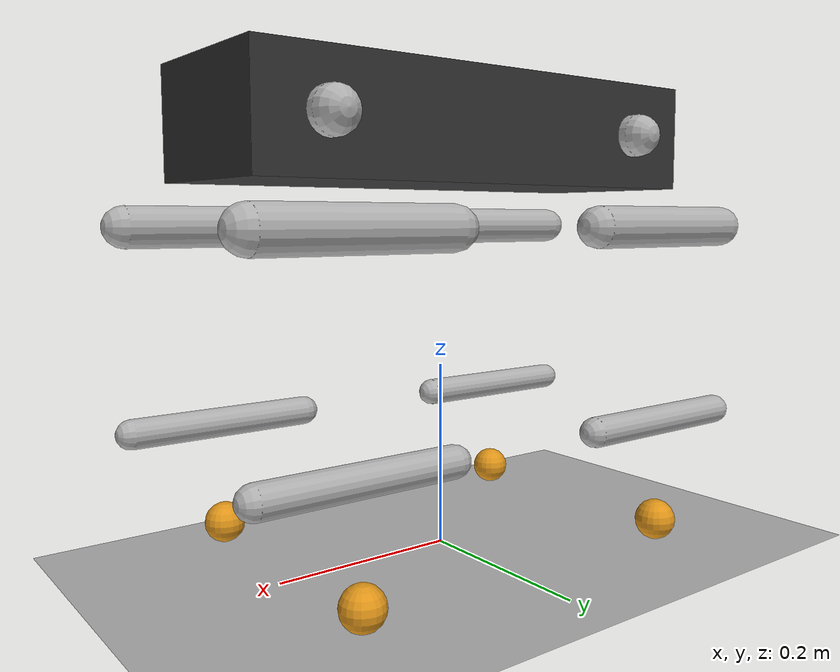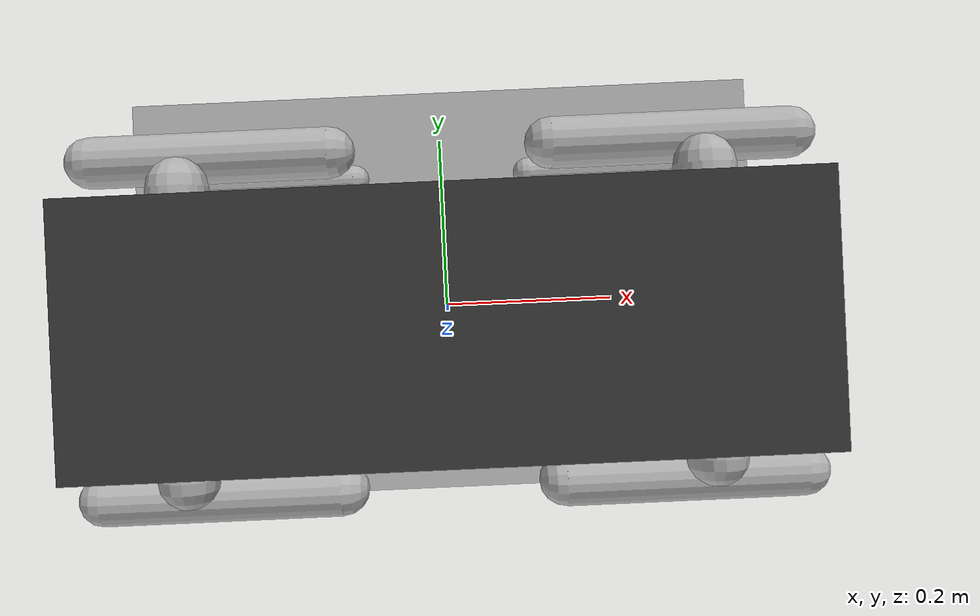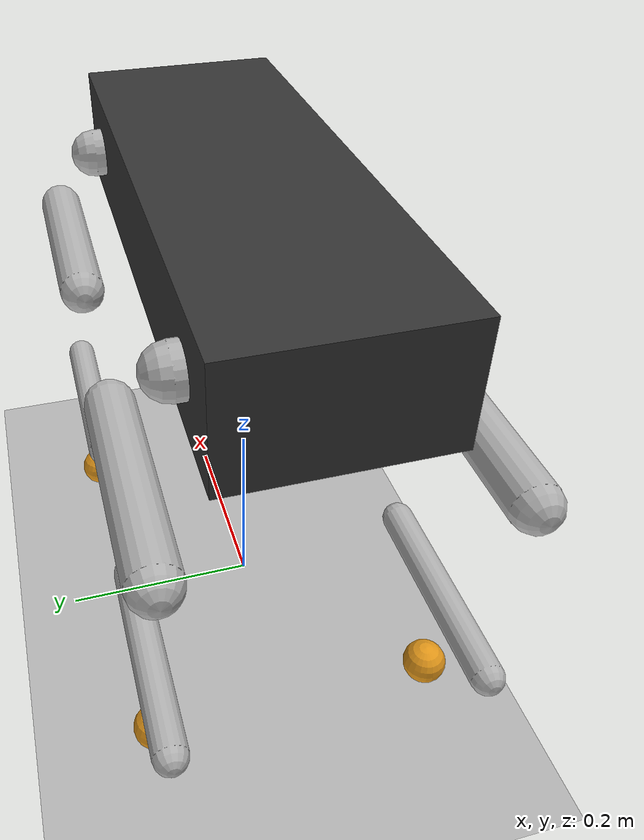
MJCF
<mujoco model="unitree_go2">

  <compiler angle="radian" autolimits="true"/>

  <option timestep="0.002" gravity="0 0 -9.81" iterations="50" solver="PGS"/>

  <default>
    <joint damping="0.05" armature="0.01"/>
    <geom contype="1" conaffinity="1" friction="0.8 0.02 0.001" rgba="0.7 0.7 0.7 1"/>
    <motor gear="1" ctrllimited="true" ctrlrange="-33.5 33.5"/>
    <default class="hip">
      <joint limited="true" range="-1.047 1.047" damping="0.2"/>
    </default>
    <default class="thigh">
      <joint limited="true" range="-1.5708 3.4907" damping="0.2"/>
    </default>
    <default class="calf">
      <joint limited="true" range="-2.7227 -0.8378" damping="0.2"/>
    </default>
  </default>

  <asset>
    <texture type="skybox" builtin="gradient" rgb1="0.3 0.5 0.7" rgb2="0 0 0" width="512" height="3072"/>
    <texture type="2d" name="groundplane" builtin="checker" mark="edge" rgb1="0.2 0.3 0.4" rgb2="0.1 0.2 0.3"
             markrgb="0.8 0.8 0.8" width="300" height="300"/>
    <material name="groundplane" texture="groundplane" texuniform="true" texrepeat="5 5" reflectance="0.2"/>
  </asset>

  <worldbody>
    <light pos="0 0 3" dir="0 0 -1" directional="true"/>
    <geom name="floor" size="0 0 0.05" type="plane" material="groundplane" condim="3"/>

    <!-- Torso / base -->
    <body name="base" pos="0 0 0.45">
      <freejoint name="root"/>
      <inertial pos="0 0 0" mass="6.921"
                diaginertia="0.051 0.291 0.302"/>
      <geom type="box" size="0.267 0.097 0.057" rgba="0.2 0.2 0.2 1"/>
      <site name="base_site" pos="0 0 0" size="0.01"/>

      <!-- Front-Left leg -->
      <body name="FL_hip" pos="0.1934 0.0465 0">
        <inertial pos="0 0 0" mass="0.678" diaginertia="0.001 0.001 0.001"/>
        <joint name="FL_hip_joint" class="hip" axis="1 0 0"/>
        <geom type="capsule" size="0.023 0.02" pos="0 0.04 0" quat="0.707 0.707 0 0"/>
        <body name="FL_thigh" pos="0 0.0955 0">
          <inertial pos="0 0 -0.1" mass="1.152" diaginertia="0.003 0.003 0.001"/>
          <joint name="FL_thigh_joint" class="thigh" axis="0 1 0"/>
          <geom type="capsule" size="0.022 0.1" pos="0 0 -0.1" quat="0.707 0 0.707 0"/>
          <body name="FL_calf" pos="0 0 -0.213">
            <inertial pos="0 0 -0.1" mass="0.154" diaginertia="0.001 0.001 0.0001"/>
            <joint name="FL_calf_joint" class="calf" axis="0 1 0"/>
            <geom type="capsule" size="0.016 0.1" pos="0 0 -0.1" quat="0.707 0 0.707 0"/>
            <geom name="FL_foot" type="sphere" size="0.022" pos="0 0 -0.213" contype="1" conaffinity="1" rgba="0.9 0.6 0.1 1"/>
          </body>
        </body>
      </body>

      <!-- Front-Right leg -->
      <body name="FR_hip" pos="0.1934 -0.0465 0">
        <inertial pos="0 0 0" mass="0.678" diaginertia="0.001 0.001 0.001"/>
        <joint name="FR_hip_joint" class="hip" axis="1 0 0"/>
        <geom type="capsule" size="0.023 0.02" pos="0 -0.04 0" quat="0.707 0.707 0 0"/>
        <body name="FR_thigh" pos="0 -0.0955 0">
          <inertial pos="0 0 -0.1" mass="1.152" diaginertia="0.003 0.003 0.001"/>
          <joint name="FR_thigh_joint" class="thigh" axis="0 1 0"/>
          <geom type="capsule" size="0.022 0.1" pos="0 0 -0.1" quat="0.707 0 0.707 0"/>
          <body name="FR_calf" pos="0 0 -0.213">
            <inertial pos="0 0 -0.1" mass="0.154" diaginertia="0.001 0.001 0.0001"/>
            <joint name="FR_calf_joint" class="calf" axis="0 1 0"/>
            <geom type="capsule" size="0.016 0.1" pos="0 0 -0.1" quat="0.707 0 0.707 0"/>
            <geom name="FR_foot" type="sphere" size="0.022" pos="0 0 -0.213" contype="1" conaffinity="1" rgba="0.9 0.6 0.1 1"/>
          </body>
        </body>
      </body>

      <!-- Rear-Left leg -->
      <body name="RL_hip" pos="-0.1934 0.0465 0">
        <inertial pos="0 0 0" mass="0.678" diaginertia="0.001 0.001 0.001"/>
        <joint name="RL_hip_joint" class="hip" axis="1 0 0"/>
        <geom type="capsule" size="0.023 0.02" pos="0 0.04 0" quat="0.707 0.707 0 0"/>
        <body name="RL_thigh" pos="0 0.0955 0">
          <inertial pos="0 0 -0.1" mass="1.152" diaginertia="0.003 0.003 0.001"/>
          <joint name="RL_thigh_joint" class="thigh" axis="0 1 0"/>
          <geom type="capsule" size="0.022 0.1" pos="0 0 -0.1" quat="0.707 0 0.707 0"/>
          <body name="RL_calf" pos="0 0 -0.213">
            <inertial pos="0 0 -0.1" mass="0.154" diaginertia="0.001 0.001 0.0001"/>
            <joint name="RL_calf_joint" class="calf" axis="0 1 0"/>
            <geom type="capsule" size="0.016 0.1" pos="0 0 -0.1" quat="0.707 0 0.707 0"/>
            <geom name="RL_foot" type="sphere" size="0.022" pos="0 0 -0.213" contype="1" conaffinity="1" rgba="0.9 0.6 0.1 1"/>
          </body>
        </body>
      </body>

      <!-- Rear-Right leg -->
      <body name="RR_hip" pos="-0.1934 -0.0465 0">
        <inertial pos="0 0 0" mass="0.678" diaginertia="0.001 0.001 0.001"/>
        <joint name="RR_hip_joint" class="hip" axis="1 0 0"/>
        <geom type="capsule" size="0.023 0.02" pos="0 -0.04 0" quat="0.707 0.707 0 0"/>
        <body name="RR_thigh" pos="0 -0.0955 0">
          <inertial pos="0 0 -0.1" mass="1.152" diaginertia="0.003 0.003 0.001"/>
          <joint name="RR_thigh_joint" class="thigh" axis="0 1 0"/>
          <geom type="capsule" size="0.022 0.1" pos="0 0 -0.1" quat="0.707 0 0.707 0"/>
          <body name="RR_calf" pos="0 0 -0.213">
            <inertial pos="0 0 -0.1" mass="0.154" diaginertia="0.001 0.001 0.0001"/>
            <joint name="RR_calf_joint" class="calf" axis="0 1 0"/>
            <geom type="capsule" size="0.016 0.1" pos="0 0 -0.1" quat="0.707 0 0.707 0"/>
            <geom name="RR_foot" type="sphere" size="0.022" pos="0 0 -0.213" contype="1" conaffinity="1" rgba="0.9 0.6 0.1 1"/>
          </body>
        </body>
      </body>

    </body>
  </worldbody>

  <actuator>
    <!-- Hip joints (abduction) -->
    <motor name="FL_hip"   joint="FL_hip_joint"   gear="1" ctrlrange="-33.5 33.5"/>
    <motor name="FR_hip"   joint="FR_hip_joint"   gear="1" ctrlrange="-33.5 33.5"/>
    <motor name="RL_hip"   joint="RL_hip_joint"   gear="1" ctrlrange="-33.5 33.5"/>
    <motor name="RR_hip"   joint="RR_hip_joint"   gear="1" ctrlrange="-33.5 33.5"/>
    <!-- Thigh joints (flexion) -->
    <motor name="FL_thigh" joint="FL_thigh_joint" gear="1" ctrlrange="-33.5 33.5"/>
    <motor name="FR_thigh" joint="FR_thigh_joint" gear="1" ctrlrange="-33.5 33.5"/>
    <motor name="RL_thigh" joint="RL_thigh_joint" gear="1" ctrlrange="-33.5 33.5"/>
    <motor name="RR_thigh" joint="RR_thigh_joint" gear="1" ctrlrange="-33.5 33.5"/>
    <!-- Calf/knee joints -->
    <motor name="FL_calf"  joint="FL_calf_joint"  gear="1" ctrlrange="-33.5 33.5"/>
    <motor name="FR_calf"  joint="FR_calf_joint"  gear="1" ctrlrange="-33.5 33.5"/>
    <motor name="RL_calf"  joint="RL_calf_joint"  gear="1" ctrlrange="-33.5 33.5"/>
    <motor name="RR_calf"  joint="RR_calf_joint"  gear="1" ctrlrange="-33.5 33.5"/>
  </actuator>

  <sensor>
    <framequat name="base_quat"   objtype="site" objname="base_site"/>
    <framelinvel name="base_linvel" objtype="site" objname="base_site"/>
    <frameangvel name="base_angvel" objtype="site" objname="base_site"/>
    <jointpos name="FL_hip_pos"   joint="FL_hip_joint"/>
    <jointpos name="FR_hip_pos"   joint="FR_hip_joint"/>
    <jointpos name="RL_hip_pos"   joint="RL_hip_joint"/>
    <jointpos name="RR_hip_pos"   joint="RR_hip_joint"/>
    <jointpos name="FL_thigh_pos" joint="FL_thigh_joint"/>
    <jointpos name="FR_thigh_pos" joint="FR_thigh_joint"/>
    <jointpos name="RL_thigh_pos" joint="RL_thigh_joint"/>
    <jointpos name="RR_thigh_pos" joint="RR_thigh_joint"/>
    <jointpos name="FL_calf_pos"  joint="FL_calf_joint"/>
    <jointpos name="FR_calf_pos"  joint="FR_calf_joint"/>
    <jointpos name="RL_calf_pos"  joint="RL_calf_joint"/>
    <jointpos name="RR_calf_pos"  joint="RR_calf_joint"/>
    <jointvel name="FL_hip_vel"   joint="FL_hip_joint"/>
    <jointvel name="FR_hip_vel"   joint="FR_hip_joint"/>
    <jointvel name="RL_hip_vel"   joint="RL_hip_joint"/>
    <jointvel name="RR_hip_vel"   joint="RR_hip_joint"/>
    <jointvel name="FL_thigh_vel" joint="FL_thigh_joint"/>
    <jointvel name="FR_thigh_vel" joint="FR_thigh_joint"/>
    <jointvel name="RL_thigh_vel" joint="RL_thigh_joint"/>
    <jointvel name="RR_thigh_vel" joint="RR_thigh_joint"/>
    <jointvel name="FL_calf_vel"  joint="FL_calf_joint"/>
    <jointvel name="FR_calf_vel"  joint="FR_calf_joint"/>
    <jointvel name="RL_calf_vel"  joint="RL_calf_joint"/>
    <jointvel name="RR_calf_vel"  joint="RR_calf_joint"/>
  </sensor>

</mujoco>
